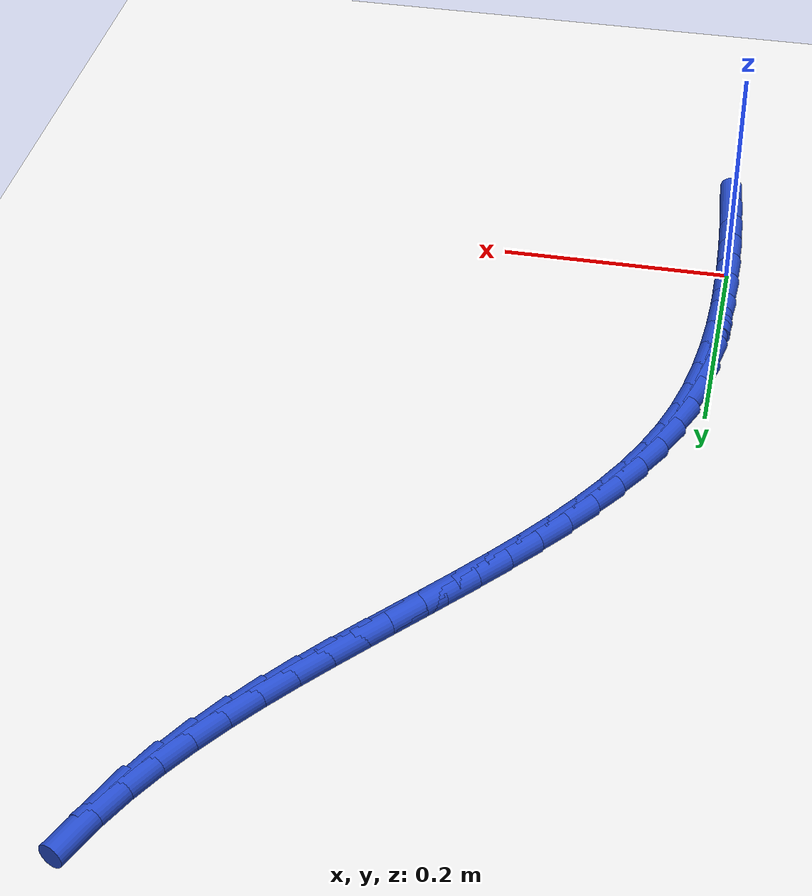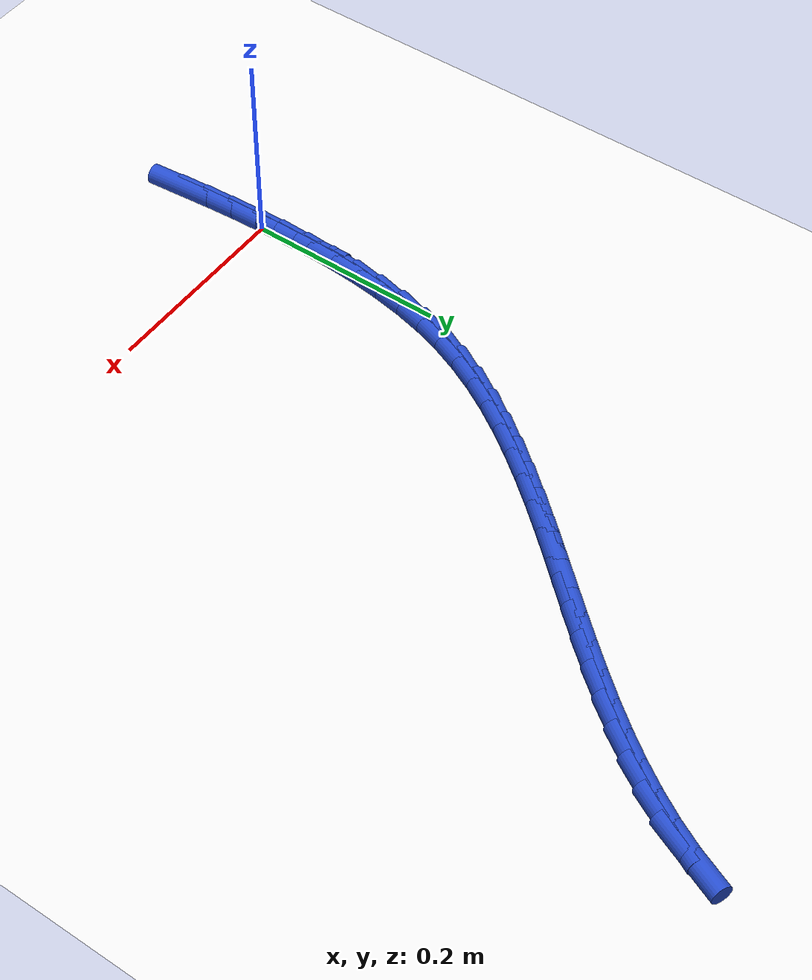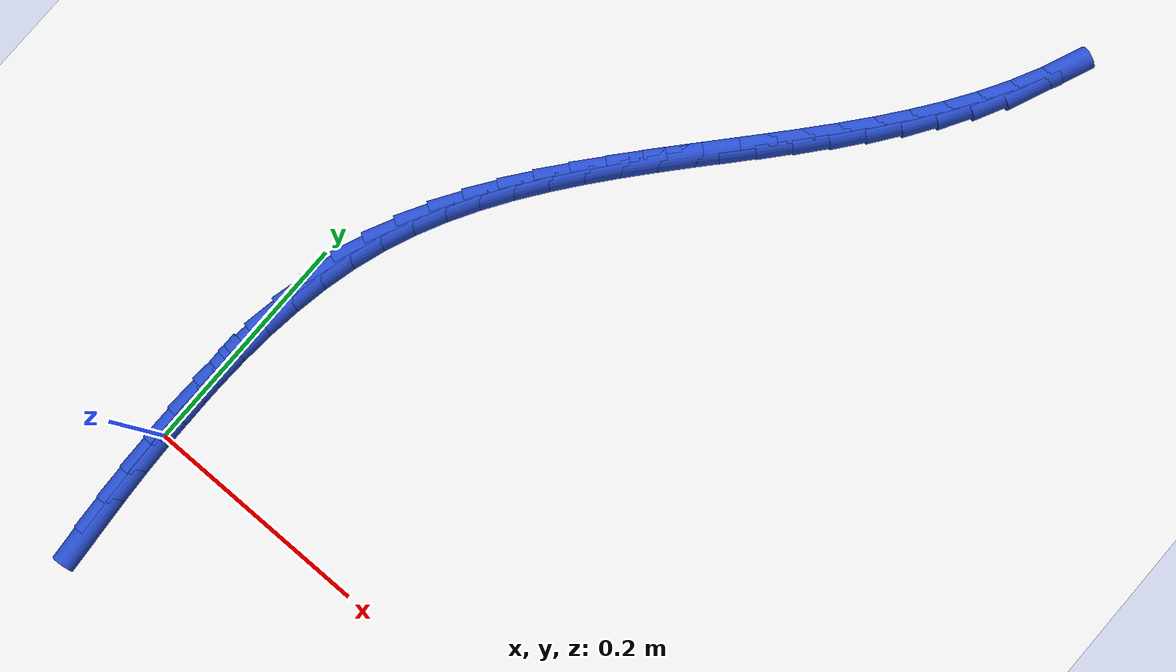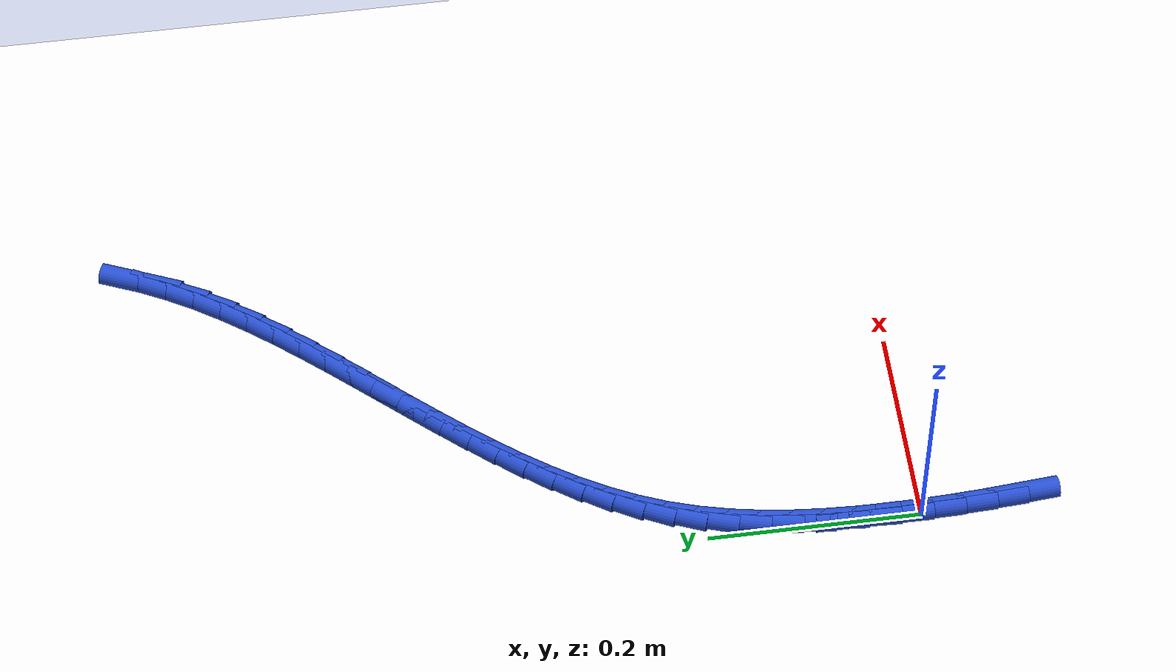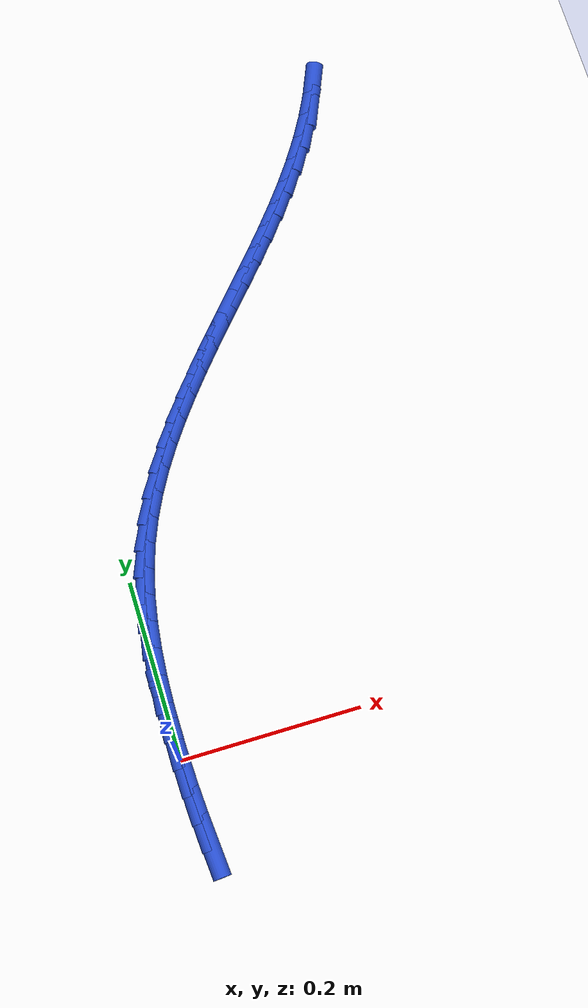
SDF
<sdf version="1.6">
 <world name="default">
  <model name="ground_plane">
   <static>1</static>
   <link name="link">
    <collision name="collision">
     <geometry><plane><normal>0 0 1</normal><size>100 100</size></plane></geometry>
     <surface><friction><ode><mu>100</mu><mu2>50</mu2></ode></friction></surface>
    </collision>
    <visual name="visual">
     <cast_shadows>0</cast_shadows>
     <geometry><plane><normal>0 0 1</normal><size>100 100</size></plane></geometry>
     <material>
      <script><uri>file://media/materials/scripts/gazebo.material</uri><name>Gazebo/WhiteGlow</name></script>
     </material>
    </visual>
   </link>
  </model>
  <model name="line">
   <link name="link_0">
    <pose>5.637851296924623e-18 -6.938893903907228e-18 0.01 0 1.57 -1.5538088194006352</pose>
    <collision name="collision">
     <geometry><cylinder><radius>0.01</radius><length>0.08</length></cylinder></geometry>
    </collision>
    <visual name="visual">
     <material>
      <script><name>Gazebo/Blue</name><uri>file://media/materials/scripts/gazebo.material</uri></script>
     </material>
     <geometry><cylinder><radius>0.01</radius><length>0.08</length></cylinder></geometry>
    </visual>
   </link>
   <link name="link_1">
    <pose>-0.0005110091143865744 0.030078571664121947 0.01 0 1.57 1.5618037818562898</pose>
    <collision name="collision">
     <geometry><cylinder><radius>0.01</radius><length>0.08</length></cylinder></geometry>
    </collision>
    <visual name="visual">
     <material>
      <script><name>Gazebo/Blue</name><uri>file://media/materials/scripts/gazebo.material</uri></script>
     </material>
     <geometry><cylinder><radius>0.01</radius><length>0.08</length></cylinder></geometry>
    </visual>
   </link>
   <link name="link_2">
    <pose>-0.0002397270242196615 0.060245201855308496 0.01 0 1.57 1.5294547088791701</pose>
    <collision name="collision">
     <geometry><cylinder><radius>0.01</radius><length>0.08</length></cylinder></geometry>
    </collision>
    <visual name="visual">
     <material>
      <script><name>Gazebo/Blue</name><uri>file://media/materials/scripts/gazebo.material</uri></script>
     </material>
     <geometry><cylinder><radius>0.01</radius><length>0.08</length></cylinder></geometry>
    </visual>
   </link>
   <link name="link_3">
    <pose>0.001005851843149622 0.09035696890232352 0.01 0 1.57 1.4903431412226193</pose>
    <collision name="collision">
     <geometry><cylinder><radius>0.01</radius><length>0.08</length></cylinder></geometry>
    </collision>
    <visual name="visual">
     <material>
      <script><name>Gazebo/Blue</name><uri>file://media/materials/scripts/gazebo.material</uri></script>
     </material>
     <geometry><cylinder><radius>0.01</radius><length>0.08</length></cylinder></geometry>
    </visual>
   </link>
   <link name="link_4">
    <pose>0.0034177330603701425 0.1202709511339308 0.01 0 1.57 1.443993982352836</pose>
    <collision name="collision">
     <geometry><cylinder><radius>0.01</radius><length>0.08</length></cylinder></geometry>
    </collision>
    <visual name="visual">
     <material>
      <script><name>Gazebo/Blue</name><uri>file://media/materials/scripts/gazebo.material</uri></script>
     </material>
     <geometry><cylinder><radius>0.01</radius><length>0.08</length></cylinder></geometry>
    </visual>
   </link>
   <link name="link_5">
    <pose>0.00718792220009077 0.14984422687889418 0.01 0 1.57 1.3898956241181077</pose>
    <collision name="collision">
     <geometry><cylinder><radius>0.01</radius><length>0.08</length></cylinder></geometry>
    </collision>
    <visual name="visual">
     <material>
      <script><name>Gazebo/Blue</name><uri>file://media/materials/scripts/gazebo.material</uri></script>
     </material>
     <geometry><cylinder><radius>0.01</radius><length>0.08</length></cylinder></geometry>
    </visual>
   </link>
   <link name="link_6">
    <pose>0.012508424834960386 0.17893387446597764 0.01 0 1.57 1.3275693930481152</pose>
    <collision name="collision">
     <geometry><cylinder><radius>0.01</radius><length>0.08</length></cylinder></geometry>
    </collision>
    <visual name="visual">
     <material>
      <script><name>Gazebo/Blue</name><uri>file://media/materials/scripts/gazebo.material</uri></script>
     </material>
     <geometry><cylinder><radius>0.01</radius><length>0.08</length></cylinder></geometry>
    </visual>
   </link>
   <link name="link_7">
    <pose>0.019571246537627856 0.20739697222394485 0.01 0 1.57 1.2566828749107217</pose>
    <collision name="collision">
     <geometry><cylinder><radius>0.01</radius><length>0.08</length></cylinder></geometry>
    </collision>
    <visual name="visual">
     <material>
      <script><name>Gazebo/Blue</name><uri>file://media/materials/scripts/gazebo.material</uri></script>
     </material>
     <geometry><cylinder><radius>0.01</radius><length>0.08</length></cylinder></geometry>
    </visual>
   </link>
   <link name="link_8">
    <pose>0.02856810319835885 0.23509076684006391 0.01 0 1.57 1.1812314622817683</pose>
    <collision name="collision">
     <geometry><cylinder><radius>0.01</radius><length>0.08</length></cylinder></geometry>
    </collision>
    <visual name="visual">
     <material>
      <script><name>Gazebo/Blue</name><uri>file://media/materials/scripts/gazebo.material</uri></script>
     </material>
     <geometry><cylinder><radius>0.01</radius><length>0.08</length></cylinder></geometry>
    </visual>
   </link>
   <link name="link_9">
    <pose>0.039587802212604745 0.2619323136791692 0.01 0 1.57 1.111769995521658</pose>
    <collision name="collision">
     <geometry><cylinder><radius>0.01</radius><length>0.08</length></cylinder></geometry>
    </collision>
    <visual name="visual">
     <material>
      <script><name>Gazebo/Blue</name><uri>file://media/materials/scripts/gazebo.material</uri></script>
     </material>
     <geometry><cylinder><radius>0.01</radius><length>0.08</length></cylinder></geometry>
    </visual>
   </link>
   <link name="link_10">
    <pose>0.052464748002979254 0.2879865228133451 0.01 0 1.57 1.0504071157463375</pose>
    <collision name="collision">
     <geometry><cylinder><radius>0.01</radius><length>0.08</length></cylinder></geometry>
    </collision>
    <visual name="visual">
     <material>
      <script><name>Gazebo/Blue</name><uri>file://media/materials/scripts/gazebo.material</uri></script>
     </material>
     <geometry><cylinder><radius>0.01</radius><length>0.08</length></cylinder></geometry>
    </visual>
   </link>
   <link name="link_11">
    <pose>0.06699471870525724 0.3133407532596281 0.01 0 1.57 0.9973610260455834</pose>
    <collision name="collision">
     <geometry><cylinder><radius>0.01</radius><length>0.08</length></cylinder></geometry>
    </collision>
    <visual name="visual">
     <material>
      <script><name>Gazebo/Blue</name><uri>file://media/materials/scripts/gazebo.material</uri></script>
     </material>
     <geometry><cylinder><radius>0.01</radius><length>0.08</length></cylinder></geometry>
    </visual>
   </link>
   <link name="link_12">
    <pose>0.08297349245521338 0.3380823640350544 0.01 0 1.57 0.9525742354037662</pose>
    <collision name="collision">
     <geometry><cylinder><radius>0.01</radius><length>0.08</length></cylinder></geometry>
    </collision>
    <visual name="visual">
     <material>
      <script><name>Gazebo/Blue</name><uri>file://media/materials/scripts/gazebo.material</uri></script>
     </material>
     <geometry><cylinder><radius>0.01</radius><length>0.08</length></cylinder></geometry>
    </visual>
   </link>
   <link name="link_13">
    <pose>0.10019684738862256 0.36229871415666015 0.01 0 1.57 0.9158250410738205</pose>
    <collision name="collision">
     <geometry><cylinder><radius>0.01</radius><length>0.08</length></cylinder></geometry>
    </collision>
    <visual name="visual">
     <material>
      <script><name>Gazebo/Blue</name><uri>file://media/materials/scripts/gazebo.material</uri></script>
     </material>
     <geometry><cylinder><radius>0.01</radius><length>0.08</length></cylinder></geometry>
    </visual>
   </link>
   <link name="link_14">
    <pose>0.11846056164125954 0.3860771626414817 0.01 0 1.57 0.8868190816384095</pose>
    <collision name="collision">
     <geometry><cylinder><radius>0.01</radius><length>0.08</length></cylinder></geometry>
    </collision>
    <visual name="visual">
     <material>
      <script><name>Gazebo/Blue</name><uri>file://media/materials/scripts/gazebo.material</uri></script>
     </material>
     <geometry><cylinder><radius>0.01</radius><length>0.08</length></cylinder></geometry>
    </visual>
   </link>
   <link name="link_15">
    <pose>0.13756041334889899 0.409505068506555 0.01 0 1.57 0.8652567747027111</pose>
    <collision name="collision">
     <geometry><cylinder><radius>0.01</radius><length>0.08</length></cylinder></geometry>
    </collision>
    <visual name="visual">
     <material>
      <script><name>Gazebo/Blue</name><uri>file://media/materials/scripts/gazebo.material</uri></script>
     </material>
     <geometry><cylinder><radius>0.01</radius><length>0.08</length></cylinder></geometry>
    </visual>
   </link>
   <link name="link_16">
    <pose>0.1572921806473159 0.43266979076891665 0.01 0 1.57 0.8508790209512644</pose>
    <collision name="collision">
     <geometry><cylinder><radius>0.01</radius><length>0.08</length></cylinder></geometry>
    </collision>
    <visual name="visual">
     <material>
      <script><name>Gazebo/Blue</name><uri>file://media/materials/scripts/gazebo.material</uri></script>
     </material>
     <geometry><cylinder><radius>0.01</radius><length>0.08</length></cylinder></geometry>
    </visual>
   </link>
   <link name="link_17">
    <pose>0.177451641672285 0.45565868844560276 0.01 0 1.57 0.8434959130607775</pose>
    <collision name="collision">
     <geometry><cylinder><radius>0.01</radius><length>0.08</length></cylinder></geometry>
    </collision>
    <visual name="visual">
     <material>
      <script><name>Gazebo/Blue</name><uri>file://media/materials/scripts/gazebo.material</uri></script>
     </material>
     <geometry><cylinder><radius>0.01</radius><length>0.08</length></cylinder></geometry>
    </visual>
   </link>
   <link name="link_18">
    <pose>0.19783457455958095 0.4785591205536494 0.01 0 1.57 0.8430030838195619</pose>
    <collision name="collision">
     <geometry><cylinder><radius>0.01</radius><length>0.08</length></cylinder></geometry>
    </collision>
    <visual name="visual">
     <material>
      <script><name>Gazebo/Blue</name><uri>file://media/materials/scripts/gazebo.material</uri></script>
     </material>
     <geometry><cylinder><radius>0.01</radius><length>0.08</length></cylinder></geometry>
    </visual>
   </link>
   <link name="link_19">
    <pose>0.21823675744497867 0.5014584461100929 0.01 0 1.57 0.8493891083745766</pose>
    <collision name="collision">
     <geometry><cylinder><radius>0.01</radius><length>0.08</length></cylinder></geometry>
    </collision>
    <visual name="visual">
     <material>
      <script><name>Gazebo/Blue</name><uri>file://media/materials/scripts/gazebo.material</uri></script>
     </material>
     <geometry><cylinder><radius>0.01</radius><length>0.08</length></cylinder></geometry>
    </visual>
   </link>
   <link name="link_20">
    <pose>0.2384539684642528 0.5244440241319694 0.01 0 1.57 0.8627357819041892</pose>
    <collision name="collision">
     <geometry><cylinder><radius>0.01</radius><length>0.08</length></cylinder></geometry>
    </collision>
    <visual name="visual">
     <material>
      <script><name>Gazebo/Blue</name><uri>file://media/materials/scripts/gazebo.material</uri></script>
     </material>
     <geometry><cylinder><radius>0.01</radius><length>0.08</length></cylinder></geometry>
    </visual>
   </link>
   <link name="link_21">
    <pose>0.2582819857531784 0.5476032136363154 0.01 0 1.57 0.8832114266778436</pose>
    <collision name="collision">
     <geometry><cylinder><radius>0.01</radius><length>0.08</length></cylinder></geometry>
    </collision>
    <visual name="visual">
     <material>
      <script><name>Gazebo/Blue</name><uri>file://media/materials/scripts/gazebo.material</uri></script>
     </material>
     <geometry><cylinder><radius>0.01</radius><length>0.08</length></cylinder></geometry>
    </visual>
   </link>
   <link name="link_22">
    <pose>0.27751658744753005 0.5710233736401669 0.01 0 1.57 0.9110557253843615</pose>
    <collision name="collision">
     <geometry><cylinder><radius>0.01</radius><length>0.08</length></cylinder></geometry>
    </collision>
    <visual name="visual">
     <material>
      <script><name>Gazebo/Blue</name><uri>file://media/materials/scripts/gazebo.material</uri></script>
     </material>
     <geometry><cylinder><radius>0.01</radius><length>0.08</length></cylinder></geometry>
    </visual>
   </link>
   <link name="link_23">
    <pose>0.2959535516830825 0.5947918631605601 0.01 0 1.57 0.9465529997581341</pose>
    <collision name="collision">
     <geometry><cylinder><radius>0.01</radius><length>0.08</length></cylinder></geometry>
    </collision>
    <visual name="visual">
     <material>
      <script><name>Gazebo/Blue</name><uri>file://media/materials/scripts/gazebo.material</uri></script>
     </material>
     <geometry><cylinder><radius>0.01</radius><length>0.08</length></cylinder></geometry>
    </visual>
   </link>
   <link name="link_24">
    <pose>0.3133886565956107 0.6189960412145313 0.01 0 1.57 0.9899896044578546</pose>
    <collision name="collision">
     <geometry><cylinder><radius>0.01</radius><length>0.08</length></cylinder></geometry>
    </collision>
    <visual name="visual">
     <material>
      <script><name>Gazebo/Blue</name><uri>file://media/materials/scripts/gazebo.material</uri></script>
     </material>
     <geometry><cylinder><radius>0.01</radius><length>0.08</length></cylinder></geometry>
    </visual>
   </link>
   <link name="link_25">
    <pose>0.3296176803208894 0.6437232668191168 0.01 0 1.57 1.041590828028233</pose>
    <collision name="collision">
     <geometry><cylinder><radius>0.01</radius><length>0.08</length></cylinder></geometry>
    </collision>
    <visual name="visual">
     <material>
      <script><name>Gazebo/Blue</name><uri>file://media/materials/scripts/gazebo.material</uri></script>
     </material>
     <geometry><cylinder><radius>0.01</radius><length>0.08</length></cylinder></geometry>
    </visual>
   </link>
   <link name="link_26">
    <pose>0.34443640099469325 0.6690608989913528 0.01 0 1.57 1.1014345891142463</pose>
    <collision name="collision">
     <geometry><cylinder><radius>0.01</radius><length>0.08</length></cylinder></geometry>
    </collision>
    <visual name="visual">
     <material>
      <script><name>Gazebo/Blue</name><uri>file://media/materials/scripts/gazebo.material</uri></script>
     </material>
     <geometry><cylinder><radius>0.01</radius><length>0.08</length></cylinder></geometry>
    </visual>
   </link>
   <link name="link_27">
    <pose>0.35764059675279725 0.6950962967482754 0.01 0 1.57 1.169344924488211</pose>
    <collision name="collision">
     <geometry><cylinder><radius>0.01</radius><length>0.08</length></cylinder></geometry>
    </collision>
    <visual name="visual">
     <material>
      <script><name>Gazebo/Blue</name><uri>file://media/materials/scripts/gazebo.material</uri></script>
     </material>
     <geometry><cylinder><radius>0.01</radius><length>0.08</length></cylinder></geometry>
    </visual>
   </link>
   <link name="link_267">
    <pose>0.005297722914589371 -0.08907399000640692 0.01 0 1.57 -1.4895570045095015</pose>
    <collision name="collision">
     <geometry><cylinder><radius>0.01</radius><length>0.08</length></cylinder></geometry>
    </collision>
    <visual name="visual">
     <material>
      <script><name>Gazebo/Blue</name><uri>file://media/materials/scripts/gazebo.material</uri></script>
     </material>
     <geometry><cylinder><radius>0.01</radius><length>0.08</length></cylinder></geometry>
    </visual>
   </link>
   <link name="link_268">
    <pose>0.002894500387570732 -0.059557086362487924 0.01 0 1.57 -1.5116839859391529</pose>
    <collision name="collision">
     <geometry><cylinder><radius>0.01</radius><length>0.08</length></cylinder></geometry>
    </collision>
    <visual name="visual">
     <material>
      <script><name>Gazebo/Blue</name><uri>file://media/materials/scripts/gazebo.material</uri></script>
     </material>
     <geometry><cylinder><radius>0.01</radius><length>0.08</length></cylinder></geometry>
    </visual>
   </link>
   <link name="link_269">
    <pose>0.001137998600757756 -0.029877067128368566 0.01 0 1.57 -1.5327253629238808</pose>
    <collision name="collision">
     <geometry><cylinder><radius>0.01</radius><length>0.08</length></cylinder></geometry>
    </collision>
    <visual name="visual">
     <material>
      <script><name>Gazebo/Blue</name><uri>file://media/materials/scripts/gazebo.material</uri></script>
     </material>
     <geometry><cylinder><radius>0.01</radius><length>0.08</length></cylinder></geometry>
    </visual>
   </link>
   <link name="link_270">
    <pose>0.0 4.163336342344337e-17 0.01 0 1.57 -1.5526067525581628</pose>
    <collision name="collision">
     <geometry><cylinder><radius>0.01</radius><length>0.08</length></cylinder></geometry>
    </collision>
    <visual name="visual">
     <material>
      <script><name>Gazebo/Blue</name><uri>file://media/materials/scripts/gazebo.material</uri></script>
     </material>
     <geometry><cylinder><radius>0.01</radius><length>0.08</length></cylinder></geometry>
    </visual>
   </link>
   <link name="link_271">
    <pose>-0.0005477129688531552 0.0301080473266703 0.01 0 1.57 1.5703236989076943</pose>
    <collision name="collision">
     <geometry><cylinder><radius>0.01</radius><length>0.08</length></cylinder></geometry>
    </collision>
    <visual name="visual">
     <material>
      <script><name>Gazebo/Blue</name><uri>file://media/materials/scripts/gazebo.material</uri></script>
     </material>
     <geometry><cylinder><radius>0.01</radius><length>0.08</length></cylinder></geometry>
    </visual>
   </link>
   <link name="link_272">
    <pose>-0.0005333578599522157 0.060481007155691935 0.01 0 1.57 -1.5619779545542356</pose>
    <collision name="collision">
     <geometry><cylinder><radius>0.01</radius><length>0.08</length></cylinder></geometry>
    </collision>
    <visual name="visual">
     <material>
      <script><name>Gazebo/Blue</name><uri>file://media/materials/scripts/gazebo.material</uri></script>
     </material>
     <geometry><cylinder><radius>0.01</radius><length>0.08</length></cylinder></geometry>
    </visual>
   </link>
  </model>
 </world>
</sdf>
